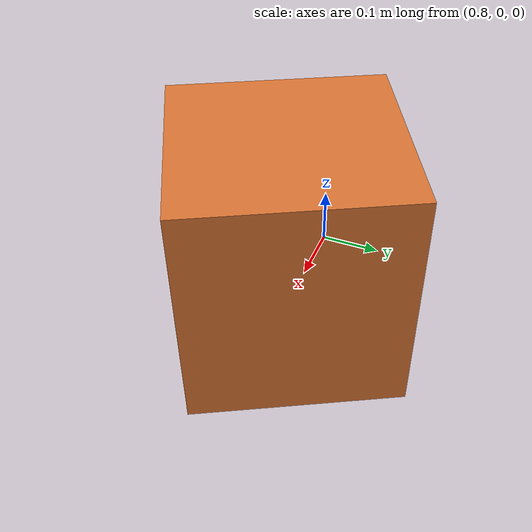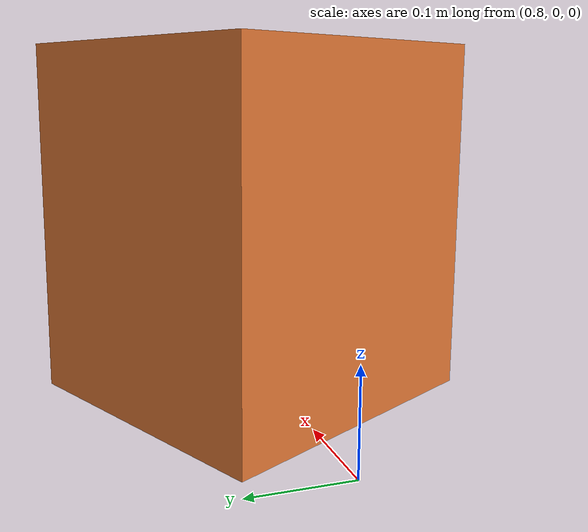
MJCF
<mujoco model="largebox">
  <compiler meshdir="."/>

  <asset>
    <mesh name="largebox_mesh" file="visual.obj"/>
  </asset>

  <worldbody>
    <body name="hoi_object" pos="1 0 0.30683311">
      <freejoint name="hoi_object_freejoint"/>
      <geom name="hoi_object_visual" type="mesh" mesh="largebox_mesh" mass="0"
            contype="0" conaffinity="0" group="2" rgba="0.85 0.45 0.20 1"/>
      <geom name="hoi_object_collision" type="mesh" mesh="largebox_mesh"
            density="25" friction="1 0.005 0.0001" solref="0.02 1" margin="0.005" rgba="0 0 0 0"/>
    </body>
  </worldbody>
</mujoco>
